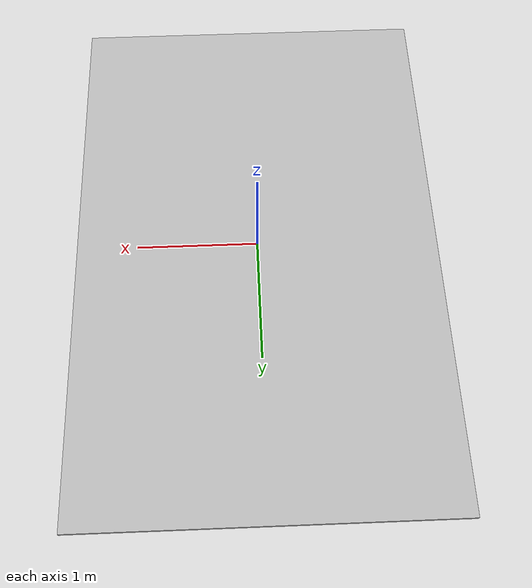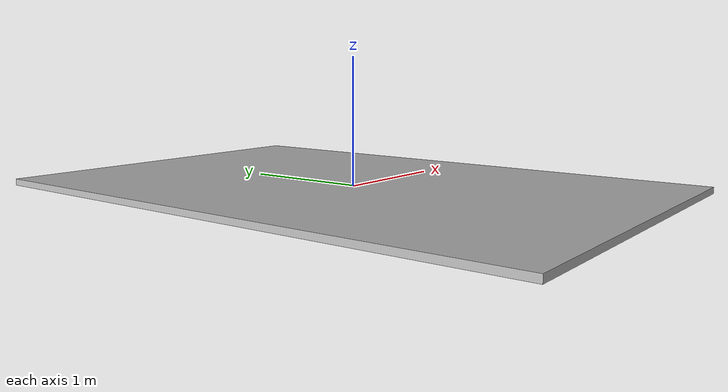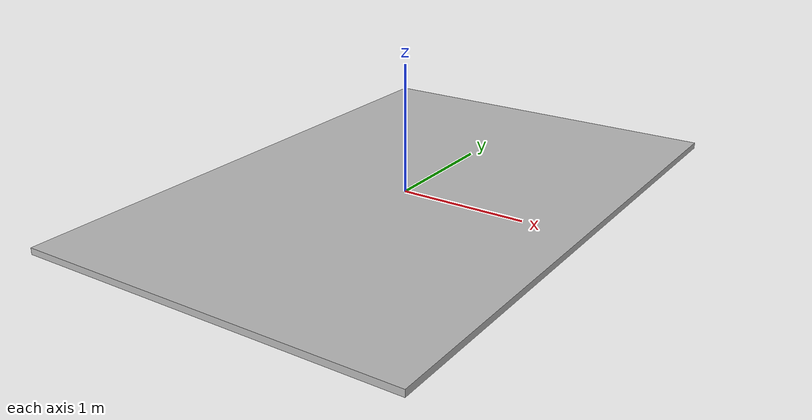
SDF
<?xml version="1.0" ?>
<sdf version="1.5">
  <model name="rpg_streets2">
    <static>true</static>
    <link name="body">
      <pose>0 0 0 0 0 0</pose>
      <visual name="visual">
	<geometry>
	  <box>
	    <size>3 4.5 0.05</size>
	  </box>
	</geometry>
	<material>
	  <script>
            <uri>model://rpg_streets2</uri>
            <name>RPGStreets2/Diffuse</name>
          </script>
	</material>
      </visual>
    </link>
  </model>
</sdf>
